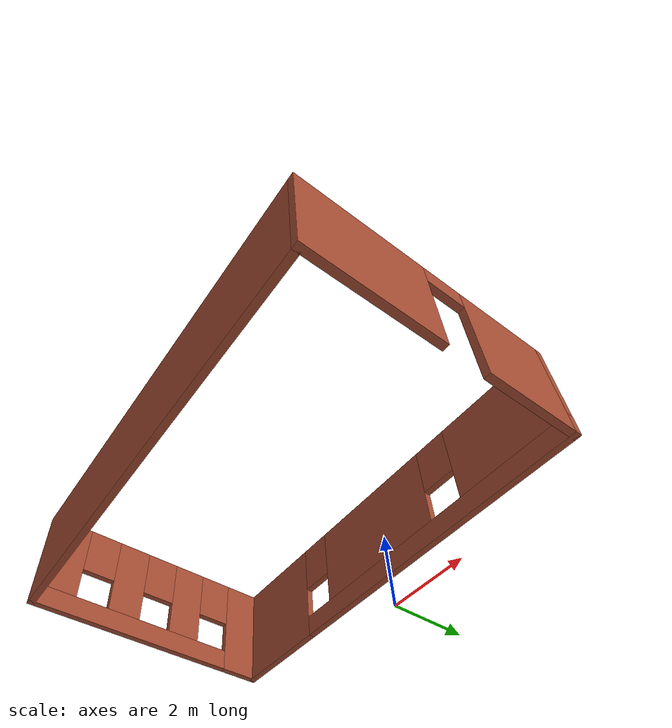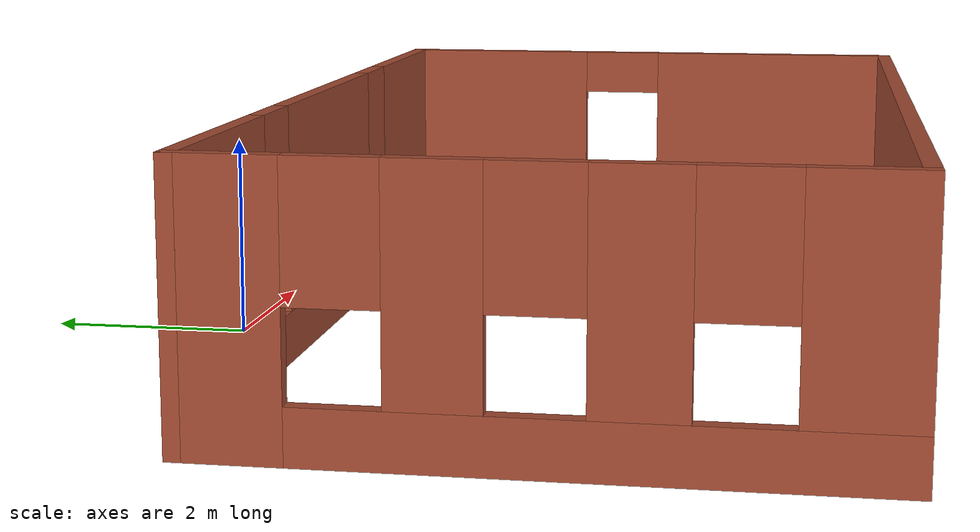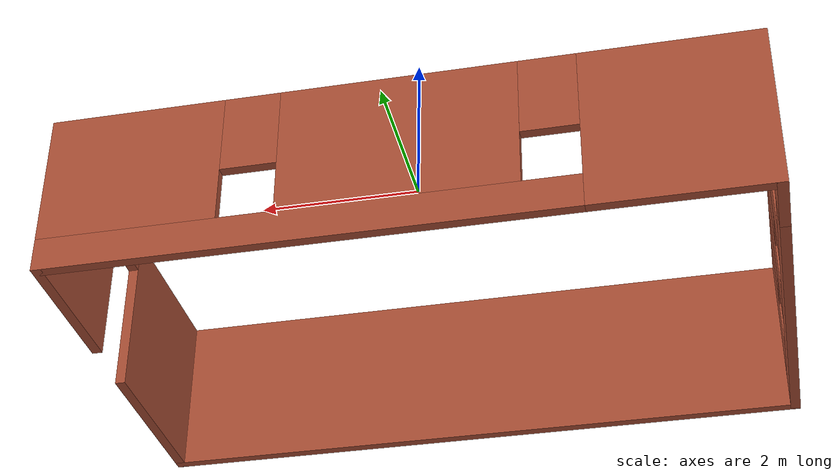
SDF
<?xml version='1.0'?>
<sdf version='1.6'>
  <model name='CoffeeShop-EP1'>
    <pose frame=''>0.465 -3.705 0 0 -0 0</pose>
    <link name='Wall_4'>
      <pose frame=''>-4.925 0 0 0 -0 -1.5708</pose>
      <visual name='Wall_4_Visual_0'>
        <pose frame=''>-2.50273 0 1.25 0 -0 0</pose>
        <geometry>
          <box>
            <size>0.994536 0.15 2.5</size>
          </box>
        </geometry>
        <material>
          <script>
            <uri>file://media/materials/scripts/gazebo.material</uri>
            <name>Gazebo/Bricks</name>
          </script>
          <ambient>1 1 1 1</ambient>
        </material>
        <meta>
          <layer>0</layer>
        </meta>
      </visual>
      <collision name='Wall_4_Collision_0'>
        <geometry>
          <box>
            <size>0.994536 0.15 2.5</size>
          </box>
        </geometry>
        <pose frame=''>-2.50273 0 1.25 0 -0 0</pose>
      </collision>
      <visual name='Wall_4_Visual_1'>
        <pose frame=''>0.497268 0 0.25 0 -0 0</pose>
        <geometry>
          <box>
            <size>5.00546 0.15 0.5</size>
          </box>
        </geometry>
        <material>
          <script>
            <uri>file://media/materials/scripts/gazebo.material</uri>
            <name>Gazebo/Bricks</name>
          </script>
          <ambient>1 1 1 1</ambient>
        </material>
        <meta>
          <layer>0</layer>
        </meta>
      </visual>
      <collision name='Wall_4_Collision_1'>
        <geometry>
          <box>
            <size>5.00546 0.15 0.5</size>
          </box>
        </geometry>
        <pose frame=''>0.497268 0 0.25 0 -0 0</pose>
      </collision>
      <visual name='Wall_4_Visual_2'>
        <pose frame=''>-0.803798 0 1.5 0 -0 0</pose>
        <geometry>
          <box>
            <size>0.803333 0.15 2</size>
          </box>
        </geometry>
        <material>
          <script>
            <uri>file://media/materials/scripts/gazebo.material</uri>
            <name>Gazebo/Bricks</name>
          </script>
          <ambient>1 1 1 1</ambient>
        </material>
        <meta>
          <layer>0</layer>
        </meta>
      </visual>
      <collision name='Wall_4_Collision_2'>
        <geometry>
          <box>
            <size>0.803333 0.15 2</size>
          </box>
        </geometry>
        <pose frame=''>-0.803798 0 1.5 0 -0 0</pose>
      </collision>
      <visual name='Wall_4_Visual_3'>
        <pose frame=''>0.801059 0 1.5 0 -0 0</pose>
        <geometry>
          <box>
            <size>0.80638 0.15 2</size>
          </box>
        </geometry>
        <material>
          <script>
            <uri>file://media/materials/scripts/gazebo.material</uri>
            <name>Gazebo/Bricks</name>
          </script>
          <ambient>1 1 1 1</ambient>
        </material>
        <meta>
          <layer>0</layer>
        </meta>
      </visual>
      <collision name='Wall_4_Collision_3'>
        <geometry>
          <box>
            <size>0.80638 0.15 2</size>
          </box>
        </geometry>
        <pose frame=''>0.801059 0 1.5 0 -0 0</pose>
      </collision>
      <visual name='Wall_4_Visual_4'>
        <pose frame=''>2.50212 0 1.5 0 -0 0</pose>
        <geometry>
          <box>
            <size>0.995751 0.15 2</size>
          </box>
        </geometry>
        <material>
          <script>
            <uri>file://media/materials/scripts/gazebo.material</uri>
            <name>Gazebo/Bricks</name>
          </script>
          <ambient>1 1 1 1</ambient>
        </material>
        <meta>
          <layer>0</layer>
        </meta>
      </visual>
      <collision name='Wall_4_Collision_4'>
        <geometry>
          <box>
            <size>0.995751 0.15 2</size>
          </box>
        </geometry>
        <pose frame=''>2.50212 0 1.5 0 -0 0</pose>
      </collision>
      <visual name='Wall_4_Visual_5'>
        <pose frame=''>-1.60546 0 1.9 0 -0 0</pose>
        <geometry>
          <box>
            <size>0.8 0.15 1.2</size>
          </box>
        </geometry>
        <material>
          <script>
            <uri>file://media/materials/scripts/gazebo.material</uri>
            <name>Gazebo/Bricks</name>
          </script>
          <ambient>1 1 1 1</ambient>
        </material>
        <meta>
          <layer>0</layer>
        </meta>
      </visual>
      <collision name='Wall_4_Collision_5'>
        <geometry>
          <box>
            <size>0.8 0.15 1.2</size>
          </box>
        </geometry>
        <pose frame=''>-1.60546 0 1.9 0 -0 0</pose>
      </collision>
      <visual name='Wall_4_Visual_6'>
        <pose frame=''>-0.002131 0 1.9 0 -0 0</pose>
        <geometry>
          <box>
            <size>0.8 0.15 1.2</size>
          </box>
        </geometry>
        <material>
          <script>
            <uri>file://media/materials/scripts/gazebo.material</uri>
            <name>Gazebo/Bricks</name>
          </script>
          <ambient>1 1 1 1</ambient>
        </material>
        <meta>
          <layer>0</layer>
        </meta>
      </visual>
      <collision name='Wall_4_Collision_6'>
        <geometry>
          <box>
            <size>0.8 0.15 1.2</size>
          </box>
        </geometry>
        <pose frame=''>-0.002131 0 1.9 0 -0 0</pose>
      </collision>
      <visual name='Wall_4_Visual_7'>
        <pose frame=''>1.60425 0 1.9 0 -0 0</pose>
        <geometry>
          <box>
            <size>0.8 0.15 1.2</size>
          </box>
        </geometry>
        <material>
          <script>
            <uri>file://media/materials/scripts/gazebo.material</uri>
            <name>Gazebo/Bricks</name>
          </script>
          <ambient>1 1 1 1</ambient>
        </material>
        <meta>
          <layer>0</layer>
        </meta>
      </visual>
      <collision name='Wall_4_Collision_7'>
        <geometry>
          <box>
            <size>0.8 0.15 1.2</size>
          </box>
        </geometry>
        <pose frame=''>1.60425 0 1.9 0 -0 0</pose>
      </collision>
    </link>
    <link name='Wall_5'>
      <collision name='Wall_5_Collision'>
        <geometry>
          <box>
            <size>10 0.15 2.5</size>
          </box>
        </geometry>
        <pose frame=''>0 0 1.25 0 -0 0</pose>
      </collision>
      <visual name='Wall_5_Visual'>
        <pose frame=''>0 0 1.25 0 -0 0</pose>
        <geometry>
          <box>
            <size>10 0.15 2.5</size>
          </box>
        </geometry>
        <material>
          <script>
            <uri>file://media/materials/scripts/gazebo.material</uri>
            <name>Gazebo/Bricks</name>
          </script>
          <ambient>1 1 1 1</ambient>
        </material>
        <meta>
          <layer>0</layer>
        </meta>
      </visual>
      <pose frame=''>0 -2.925 0 0 -0 0</pose>
    </link>
    <link name='Wall_6'>
      <pose frame=''>4.925 0 0 0 -0 1.5708</pose>
      <visual name='Wall_6_Visual_0'>
        <pose frame=''>-1.5708 0 1.25 0 -0 0</pose>
        <geometry>
          <box>
            <size>2.85841 0.15 2.5</size>
          </box>
        </geometry>
        <material>
          <script>
            <uri>file://media/materials/scripts/gazebo.material</uri>
            <name>Gazebo/Bricks</name>
          </script>
          <ambient>1 1 1 1</ambient>
        </material>
        <meta>
          <layer>0</layer>
        </meta>
      </visual>
      <collision name='Wall_6_Collision_0'>
        <geometry>
          <box>
            <size>2.85841 0.15 2.5</size>
          </box>
        </geometry>
        <pose frame=''>-1.5708 0 1.25 0 -0 0</pose>
      </collision>
      <visual name='Wall_6_Visual_1'>
        <pose frame=''>1.8792 0 1.25 0 -0 0</pose>
        <geometry>
          <box>
            <size>2.24159 0.15 2.5</size>
          </box>
        </geometry>
        <material>
          <script>
            <uri>file://media/materials/scripts/gazebo.material</uri>
            <name>Gazebo/Bricks</name>
          </script>
          <ambient>1 1 1 1</ambient>
        </material>
        <meta>
          <layer>0</layer>
        </meta>
      </visual>
      <collision name='Wall_6_Collision_1'>
        <geometry>
          <box>
            <size>2.24159 0.15 2.5</size>
          </box>
        </geometry>
        <pose frame=''>1.8792 0 1.25 0 -0 0</pose>
      </collision>
      <visual name='Wall_6_Visual_2'>
        <pose frame=''>0.308408 0 2.25 0 -0 0</pose>
        <geometry>
          <box>
            <size>0.9 0.15 0.5</size>
          </box>
        </geometry>
        <material>
          <script>
            <uri>file://media/materials/scripts/gazebo.material</uri>
            <name>Gazebo/Bricks</name>
          </script>
          <ambient>1 1 1 1</ambient>
        </material>
        <meta>
          <layer>0</layer>
        </meta>
      </visual>
      <collision name='Wall_6_Collision_2'>
        <geometry>
          <box>
            <size>0.9 0.15 0.5</size>
          </box>
        </geometry>
        <pose frame=''>0.308408 0 2.25 0 -0 0</pose>
      </collision>
    </link>
    <link name='Wall_8'>
      <pose frame=''>0 2.925 0 0 -0 0</pose>
      <visual name='Wall_8_Visual_0'>
        <pose frame=''>-3.72931 0 1.25 0 -0 0</pose>
        <geometry>
          <box>
            <size>2.54138 0.15 2.5</size>
          </box>
        </geometry>
        <material>
          <script>
            <uri>file://media/materials/scripts/gazebo.material</uri>
            <name>Gazebo/Bricks</name>
          </script>
          <ambient>1 1 1 1</ambient>
        </material>
        <meta>
          <layer>0</layer>
        </meta>
      </visual>
      <collision name='Wall_8_Collision_0'>
        <geometry>
          <box>
            <size>2.54138 0.15 2.5</size>
          </box>
        </geometry>
        <pose frame=''>-3.72931 0 1.25 0 -0 0</pose>
      </collision>
      <visual name='Wall_8_Visual_1'>
        <pose frame=''>1.27069 0 0.25 0 -0 0</pose>
        <geometry>
          <box>
            <size>7.45862 0.15 0.5</size>
          </box>
        </geometry>
        <material>
          <script>
            <uri>file://media/materials/scripts/gazebo.material</uri>
            <name>Gazebo/Bricks</name>
          </script>
          <ambient>1 1 1 1</ambient>
        </material>
        <meta>
          <layer>0</layer>
        </meta>
      </visual>
      <collision name='Wall_8_Collision_1'>
        <geometry>
          <box>
            <size>7.45862 0.15 0.5</size>
          </box>
        </geometry>
        <pose frame=''>1.27069 0 0.25 0 -0 0</pose>
      </collision>
      <visual name='Wall_8_Visual_2'>
        <pose frame=''>-0.002128 0 1.5 0 -0 0</pose>
        <geometry>
          <box>
            <size>3.31297 0.15 2</size>
          </box>
        </geometry>
        <material>
          <script>
            <uri>file://media/materials/scripts/gazebo.material</uri>
            <name>Gazebo/Bricks</name>
          </script>
          <ambient>1 1 1 1</ambient>
        </material>
        <meta>
          <layer>0</layer>
        </meta>
      </visual>
      <collision name='Wall_8_Collision_2'>
        <geometry>
          <box>
            <size>3.31297 0.15 2</size>
          </box>
        </geometry>
        <pose frame=''>-0.002128 0 1.5 0 -0 0</pose>
      </collision>
      <visual name='Wall_8_Visual_3'>
        <pose frame=''>3.72718 0 1.5 0 -0 0</pose>
        <geometry>
          <box>
            <size>2.54564 0.15 2</size>
          </box>
        </geometry>
        <material>
          <script>
            <uri>file://media/materials/scripts/gazebo.material</uri>
            <name>Gazebo/Bricks</name>
          </script>
          <ambient>1 1 1 1</ambient>
        </material>
        <meta>
          <layer>0</layer>
        </meta>
      </visual>
      <collision name='Wall_8_Collision_3'>
        <geometry>
          <box>
            <size>2.54564 0.15 2</size>
          </box>
        </geometry>
        <pose frame=''>3.72718 0 1.5 0 -0 0</pose>
      </collision>
      <visual name='Wall_8_Visual_4'>
        <pose frame=''>-2.05862 0 1.9 0 -0 0</pose>
        <geometry>
          <box>
            <size>0.8 0.15 1.2</size>
          </box>
        </geometry>
        <material>
          <script>
            <uri>file://media/materials/scripts/gazebo.material</uri>
            <name>Gazebo/Bricks</name>
          </script>
          <ambient>1 1 1 1</ambient>
        </material>
        <meta>
          <layer>0</layer>
        </meta>
      </visual>
      <collision name='Wall_8_Collision_4'>
        <geometry>
          <box>
            <size>0.8 0.15 1.2</size>
          </box>
        </geometry>
        <pose frame=''>-2.05862 0 1.9 0 -0 0</pose>
      </collision>
      <visual name='Wall_8_Visual_5'>
        <pose frame=''>2.05436 0 1.9 0 -0 0</pose>
        <geometry>
          <box>
            <size>0.8 0.15 1.2</size>
          </box>
        </geometry>
        <material>
          <script>
            <uri>file://media/materials/scripts/gazebo.material</uri>
            <name>Gazebo/Bricks</name>
          </script>
          <ambient>1 1 1 1</ambient>
        </material>
        <meta>
          <layer>0</layer>
        </meta>
      </visual>
      <collision name='Wall_8_Collision_5'>
        <geometry>
          <box>
            <size>0.8 0.15 1.2</size>
          </box>
        </geometry>
        <pose frame=''>2.05436 0 1.9 0 -0 0</pose>
      </collision>
    </link>
    <static>1</static>
  </model>
</sdf>
